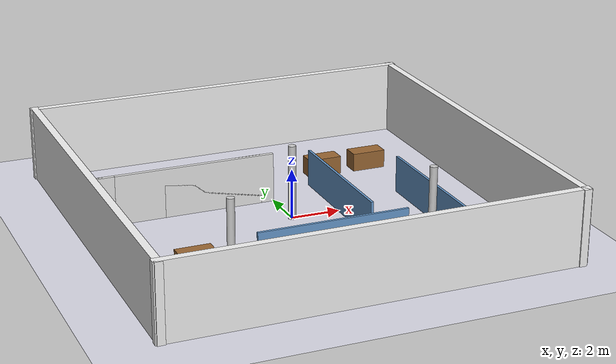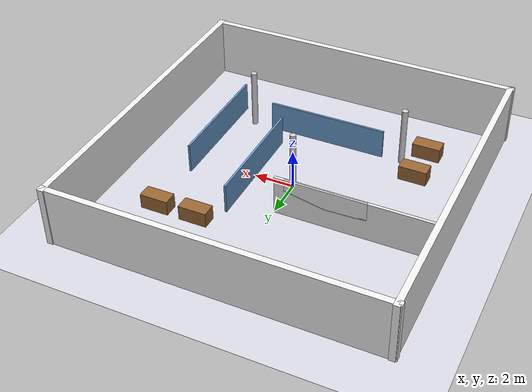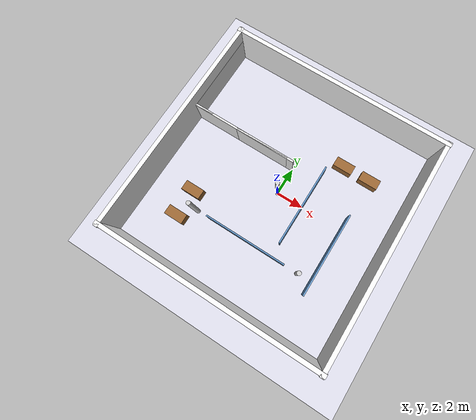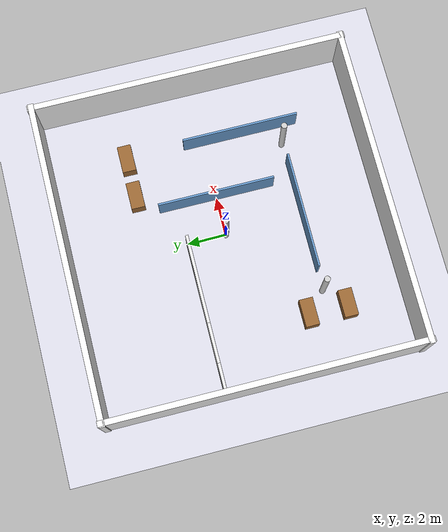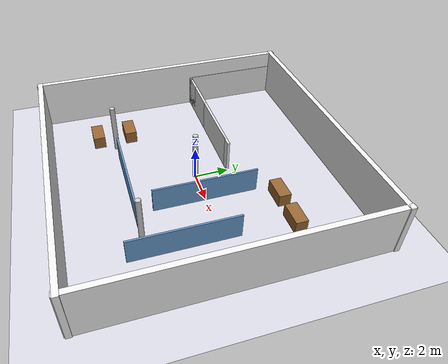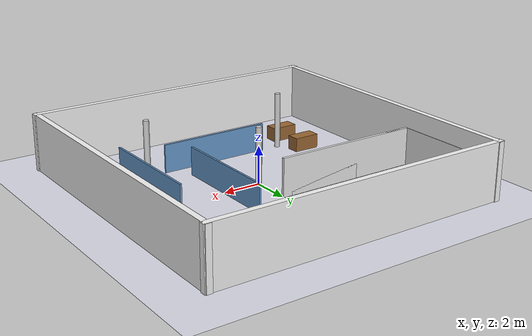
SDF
<?xml version="1.0"?>
<!--
  World: office
  An open-plan office layout with desks, partitions and meeting rooms.
  ~16×16 m floor area.
-->
<sdf version="1.9">
  <world name="office">

    <physics name="1ms" type="ignored">
      <max_step_size>0.001</max_step_size>
      <real_time_factor>1.0</real_time_factor>
    </physics>

    <plugin filename="gz-sim-physics-system"       name="gz::sim::systems::Physics"/>
    <plugin filename="gz-sim-user-commands-system" name="gz::sim::systems::UserCommands"/>
    <plugin filename="gz-sim-scene-broadcaster-system" name="gz::sim::systems::SceneBroadcaster"/>
    <plugin filename="gz-sim-sensors-system"       name="gz::sim::systems::Sensors">
      <render_engine>ogre2</render_engine>
    </plugin>
    <plugin filename="gz-sim-imu-system"           name="gz::sim::systems::Imu"/>

    <light type="directional" name="sun">
      <cast_shadows>true</cast_shadows>
      <pose>0 0 10 0 0 0</pose>
      <diffuse>0.9 0.9 0.9 1</diffuse>
      <specular>0.2 0.2 0.2 1</specular>
      <attenuation>
        <range>1000</range><constant>0.9</constant>
        <linear>0.01</linear><quadratic>0.001</quadratic>
      </attenuation>
      <direction>-0.5 0.1 -0.9</direction>
    </light>

    <model name="ground_plane">
      <static>true</static>
      <link name="link">
        <collision name="collision">
          <geometry><plane><normal>0 0 1</normal><size>100 100</size></plane></geometry>
        </collision>
        <visual name="visual">
          <geometry><plane><normal>0 0 1</normal><size>100 100</size></plane></geometry>
          <material>
            <ambient>0.85 0.85 0.9 1</ambient><diffuse>0.85 0.85 0.9 1</diffuse>
          </material>
        </visual>
      </link>
    </model>

    <!-- ====== Outer walls (16×16 m) ====== -->
    <model name="wall_s"><static>true</static><pose>0 -8 1.5 0 0 0</pose>
      <link name="link">
        <collision name="c"><geometry><box><size>16.4 0.3 3</size></box></geometry></collision>
        <visual name="v"><geometry><box><size>16.4 0.3 3</size></box></geometry>
          <material><ambient>0.95 0.95 0.95 1</ambient><diffuse>0.95 0.95 0.95 1</diffuse></material></visual>
      </link></model>

    <model name="wall_n"><static>true</static><pose>0 8 1.5 0 0 0</pose>
      <link name="link">
        <collision name="c"><geometry><box><size>16.4 0.3 3</size></box></geometry></collision>
        <visual name="v"><geometry><box><size>16.4 0.3 3</size></box></geometry>
          <material><ambient>0.95 0.95 0.95 1</ambient><diffuse>0.95 0.95 0.95 1</diffuse></material></visual>
      </link></model>

    <model name="wall_w"><static>true</static><pose>-8 0 1.5 0 0 0</pose>
      <link name="link">
        <collision name="c"><geometry><box><size>0.3 16.4 3</size></box></geometry></collision>
        <visual name="v"><geometry><box><size>0.3 16.4 3</size></box></geometry>
          <material><ambient>0.95 0.95 0.95 1</ambient><diffuse>0.95 0.95 0.95 1</diffuse></material></visual>
      </link></model>

    <model name="wall_e"><static>true</static><pose>8 0 1.5 0 0 0</pose>
      <link name="link">
        <collision name="c"><geometry><box><size>0.3 16.4 3</size></box></geometry></collision>
        <visual name="v"><geometry><box><size>0.3 16.4 3</size></box></geometry>
          <material><ambient>0.95 0.95 0.95 1</ambient><diffuse>0.95 0.95 0.95 1</diffuse></material></visual>
      </link></model>

    <!-- ====== Meeting room (top-left) ====== -->
    <model name="mr_s"><static>true</static><pose>-4 2 1 0 0 0</pose>
      <link name="link">
        <collision name="c"><geometry><box><size>8 0.15 2</size></box></geometry></collision>
        <visual name="v"><geometry><box><size>8 0.15 2</size></box></geometry>
          <material><ambient>0.9 0.9 0.9 1</ambient><diffuse>0.9 0.9 0.9 1</diffuse></material></visual>
      </link></model>

    <model name="mr_w"><static>true</static><pose>-7.9 5 1 0 0 0</pose>
      <link name="link">
        <collision name="c"><geometry><box><size>0.15 6 2</size></box></geometry></collision>
        <visual name="v"><geometry><box><size>0.15 6 2</size></box></geometry>
          <material><ambient>0.9 0.9 0.9 1</ambient><diffuse>0.9 0.9 0.9 1</diffuse></material></visual>
      </link></model>

    <!-- gap in mr_s for door: handled by offsetting wall segment -->
    <model name="mr_s_seg1"><static>true</static><pose>-7.25 2 1 0 0 0</pose>
      <link name="link">
        <collision name="c"><geometry><box><size>1.5 0.15 2</size></box></geometry></collision>
        <visual name="v"><geometry><box><size>1.5 0.15 2</size></box></geometry>
          <material><ambient>0.9 0.9 0.9 1</ambient><diffuse>0.9 0.9 0.9 1</diffuse></material></visual>
      </link></model>
    <model name="mr_s_seg2"><static>true</static><pose>-2.5 2 1 0 0 0</pose>
      <link name="link">
        <collision name="c"><geometry><box><size>4 0.15 2</size></box></geometry></collision>
        <visual name="v"><geometry><box><size>4 0.15 2</size></box></geometry>
          <material><ambient>0.9 0.9 0.9 1</ambient><diffuse>0.9 0.9 0.9 1</diffuse></material></visual>
      </link></model>

    <!-- ====== Open-plan cubicle partitions ====== -->
    <model name="part1"><static>true</static><pose>2 0 0.75 0 0 0</pose>
      <link name="link">
        <collision name="c"><geometry><box><size>0.1 6 1.5</size></box></geometry></collision>
        <visual name="v"><geometry><box><size>0.1 6 1.5</size></box></geometry>
          <material><ambient>0.4 0.6 0.8 1</ambient><diffuse>0.4 0.6 0.8 1</diffuse></material></visual>
      </link></model>

    <model name="part2"><static>true</static><pose>5 -2 0.75 0 0 0</pose>
      <link name="link">
        <collision name="c"><geometry><box><size>0.1 6 1.5</size></box></geometry></collision>
        <visual name="v"><geometry><box><size>0.1 6 1.5</size></box></geometry>
          <material><ambient>0.4 0.6 0.8 1</ambient><diffuse>0.4 0.6 0.8 1</diffuse></material></visual>
      </link></model>

    <model name="part3"><static>true</static><pose>0 -4 0.75 0 0 1.5708</pose>
      <link name="link">
        <collision name="c"><geometry><box><size>0.1 6 1.5</size></box></geometry></collision>
        <visual name="v"><geometry><box><size>0.1 6 1.5</size></box></geometry>
          <material><ambient>0.4 0.6 0.8 1</ambient><diffuse>0.4 0.6 0.8 1</diffuse></material></visual>
      </link></model>

    <!-- ====== Desks (flat boxes) ====== -->
    <model name="desk1"><static>true</static><pose>-5 -3 0.375 0 0 0</pose>
      <link name="link">
        <collision name="c"><geometry><box><size>1.4 0.7 0.75</size></box></geometry></collision>
        <visual name="v"><geometry><box><size>1.4 0.7 0.75</size></box></geometry>
          <material><ambient>0.6 0.4 0.2 1</ambient><diffuse>0.6 0.4 0.2 1</diffuse></material></visual>
      </link></model>

    <model name="desk2"><static>true</static><pose>-5 -5 0.375 0 0 0</pose>
      <link name="link">
        <collision name="c"><geometry><box><size>1.4 0.7 0.75</size></box></geometry></collision>
        <visual name="v"><geometry><box><size>1.4 0.7 0.75</size></box></geometry>
          <material><ambient>0.6 0.4 0.2 1</ambient><diffuse>0.6 0.4 0.2 1</diffuse></material></visual>
      </link></model>

    <model name="desk3"><static>true</static><pose>3 4 0.375 0 0 0</pose>
      <link name="link">
        <collision name="c"><geometry><box><size>1.4 0.7 0.75</size></box></geometry></collision>
        <visual name="v"><geometry><box><size>1.4 0.7 0.75</size></box></geometry>
          <material><ambient>0.6 0.4 0.2 1</ambient><diffuse>0.6 0.4 0.2 1</diffuse></material></visual>
      </link></model>

    <model name="desk4"><static>true</static><pose>5 4 0.375 0 0 0</pose>
      <link name="link">
        <collision name="c"><geometry><box><size>1.4 0.7 0.75</size></box></geometry></collision>
        <visual name="v"><geometry><box><size>1.4 0.7 0.75</size></box></geometry>
          <material><ambient>0.6 0.4 0.2 1</ambient><diffuse>0.6 0.4 0.2 1</diffuse></material></visual>
      </link></model>

    <!-- ====== Pillars ====== -->
    <model name="pillar1"><static>true</static><pose>0 0 1.5 0 0 0</pose>
      <link name="link">
        <collision name="c"><geometry><cylinder><radius>0.15</radius><length>3</length></cylinder></geometry></collision>
        <visual name="v"><geometry><cylinder><radius>0.15</radius><length>3</length></cylinder></geometry>
          <material><ambient>0.8 0.8 0.8 1</ambient><diffuse>0.8 0.8 0.8 1</diffuse></material></visual>
      </link></model>

    <model name="pillar2"><static>true</static><pose>-4 -4 1.5 0 0 0</pose>
      <link name="link">
        <collision name="c"><geometry><cylinder><radius>0.15</radius><length>3</length></cylinder></geometry></collision>
        <visual name="v"><geometry><cylinder><radius>0.15</radius><length>3</length></cylinder></geometry>
          <material><ambient>0.8 0.8 0.8 1</ambient><diffuse>0.8 0.8 0.8 1</diffuse></material></visual>
      </link></model>

    <model name="pillar3"><static>true</static><pose>4 -4 1.5 0 0 0</pose>
      <link name="link">
        <collision name="c"><geometry><cylinder><radius>0.15</radius><length>3</length></cylinder></geometry></collision>
        <visual name="v"><geometry><cylinder><radius>0.15</radius><length>3</length></cylinder></geometry>
          <material><ambient>0.8 0.8 0.8 1</ambient><diffuse>0.8 0.8 0.8 1</diffuse></material></visual>
      </link></model>

  </world>
</sdf>
